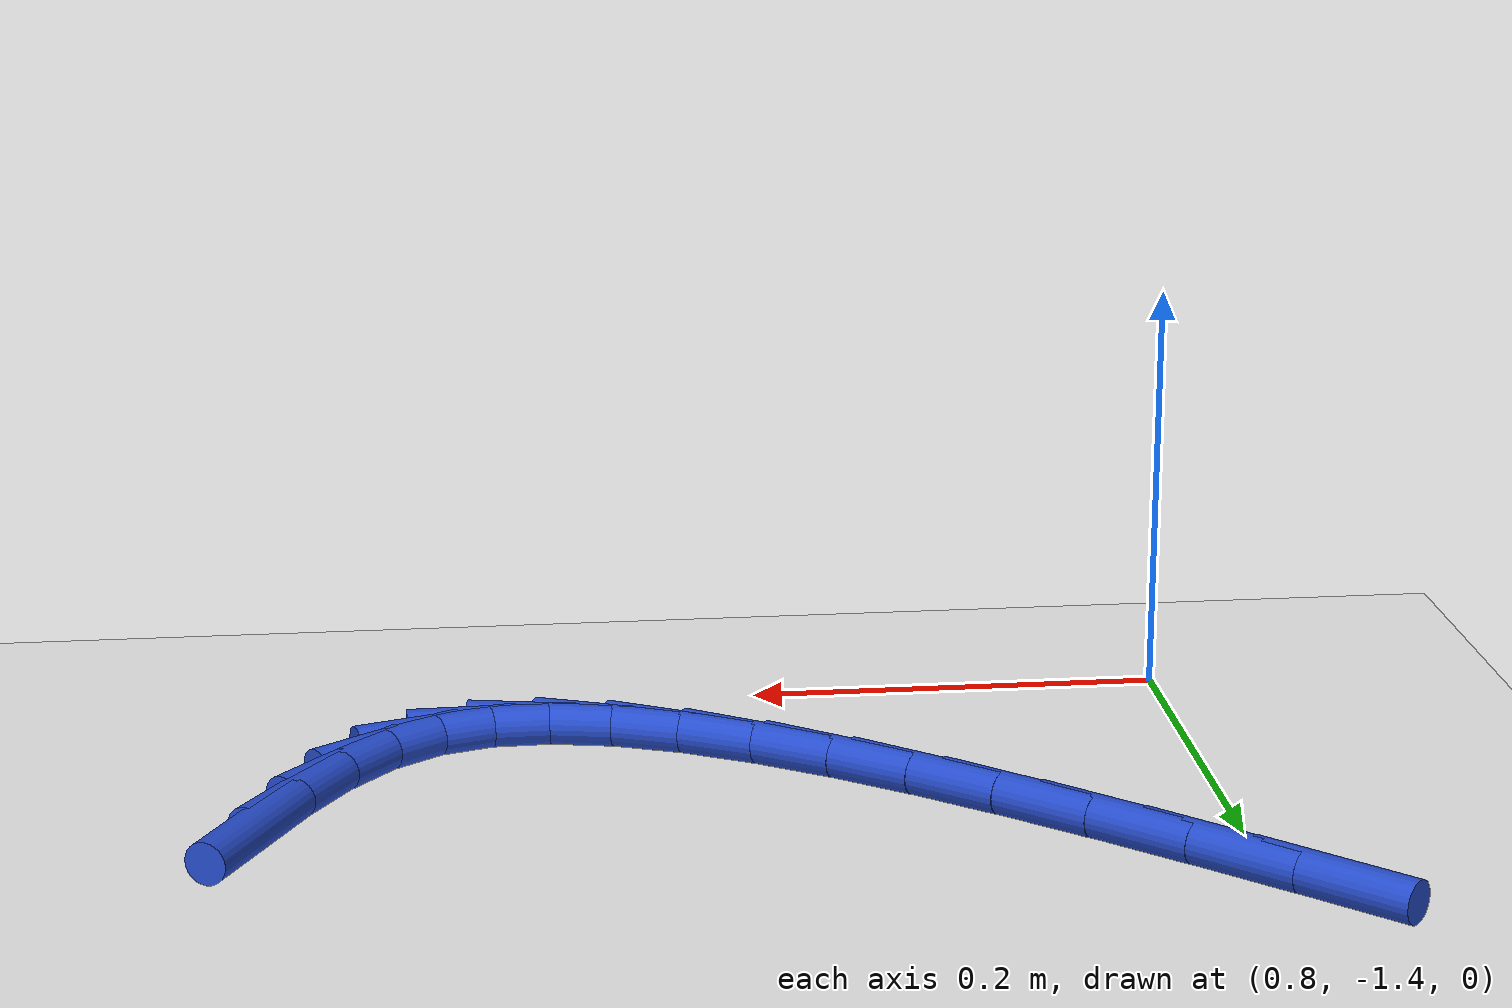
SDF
<sdf version="1.6">
 <world name="default">
  <model name="ground_plane">
   <static>1</static>
   <link name="link">
    <collision name="collision">
     <geometry><plane><normal>0 0 1</normal><size>100 100</size></plane></geometry>
     <surface><friction><ode><mu>100</mu><mu2>50</mu2></ode></friction></surface>
    </collision>
    <visual name="visual">
     <cast_shadows>0</cast_shadows>
     <geometry><plane><normal>0 0 1</normal><size>100 100</size></plane></geometry>
     <material>
      <script><uri>file://media/materials/scripts/gazebo.material</uri><name>Gazebo/WhiteGlow</name></script>
     </material>
    </visual>
   </link>
  </model>
  <model name="line">
   <link name="link_143">
    <pose>1.2387607213321248 -1.2268673184800838 0.01 0 1.57 1.1000270894159327</pose>
    <collision name="collision">
     <geometry><cylinder><radius>0.01</radius><length>0.08</length></cylinder></geometry>
    </collision>
    <visual name="visual">
     <material>
      <script><name>Gazebo/Blue</name><uri>file://media/materials/scripts/gazebo.material</uri></script>
     </material>
     <geometry><cylinder><radius>0.01</radius><length>0.08</length></cylinder></geometry>
    </visual>
   </link>
   <link name="link_144">
    <pose>1.220109661695691 -1.2635146237881982 0.01 0 1.57 1.0218045887473375</pose>
    <collision name="collision">
     <geometry><cylinder><radius>0.01</radius><length>0.08</length></cylinder></geometry>
    </collision>
    <visual name="visual">
     <material>
      <script><name>Gazebo/Blue</name><uri>file://media/materials/scripts/gazebo.material</uri></script>
     </material>
     <geometry><cylinder><radius>0.01</radius><length>0.08</length></cylinder></geometry>
    </visual>
   </link>
   <link name="link_145">
    <pose>1.2008221422049614 -1.295044665625639 0.01 0 1.57 0.8721326021165524</pose>
    <collision name="collision">
     <geometry><cylinder><radius>0.01</radius><length>0.08</length></cylinder></geometry>
    </collision>
    <visual name="visual">
     <material>
      <script><name>Gazebo/Blue</name><uri>file://media/materials/scripts/gazebo.material</uri></script>
     </material>
     <geometry><cylinder><radius>0.01</radius><length>0.08</length></cylinder></geometry>
    </visual>
   </link>
   <link name="link_146">
    <pose>1.179980596185808 -1.3198558334595898 0.01 0 1.57 0.6219839816550654</pose>
    <collision name="collision">
     <geometry><cylinder><radius>0.01</radius><length>0.08</length></cylinder></geometry>
    </collision>
    <visual name="visual">
     <material>
      <script><name>Gazebo/Blue</name><uri>file://media/materials/scripts/gazebo.material</uri></script>
     </material>
     <geometry><cylinder><radius>0.01</radius><length>0.08</length></cylinder></geometry>
    </visual>
   </link>
   <link name="link_147">
    <pose>1.1567492376537434 -1.3365105897363456 0.01 0 1.57 0.31700019651922245</pose>
    <collision name="collision">
     <geometry><cylinder><radius>0.01</radius><length>0.08</length></cylinder></geometry>
    </collision>
    <visual name="visual">
     <material>
      <script><name>Gazebo/Blue</name><uri>file://media/materials/scripts/gazebo.material</uri></script>
     </material>
     <geometry><cylinder><radius>0.01</radius><length>0.08</length></cylinder></geometry>
    </visual>
   </link>
   <link name="link_148">
    <pose>1.130985739240709 -1.3449626522412261 0.01 0 1.57 0.0321776545399955</pose>
    <collision name="collision">
     <geometry><cylinder><radius>0.01</radius><length>0.08</length></cylinder></geometry>
    </collision>
    <visual name="visual">
     <material>
      <script><name>Gazebo/Blue</name><uri>file://media/materials/scripts/gazebo.material</uri></script>
     </material>
     <geometry><cylinder><radius>0.01</radius><length>0.08</length></cylinder></geometry>
    </visual>
   </link>
   <link name="link_149">
    <pose>1.102897204952242 -1.3458667874632775 0.01 0 1.57 -0.1955775513677581</pose>
    <collision name="collision">
     <geometry><cylinder><radius>0.01</radius><length>0.08</length></cylinder></geometry>
    </collision>
    <visual name="visual">
     <material>
      <script><name>Gazebo/Blue</name><uri>file://media/materials/scripts/gazebo.material</uri></script>
     </material>
     <geometry><cylinder><radius>0.01</radius><length>0.08</length></cylinder></geometry>
    </visual>
   </link>
   <link name="link_150">
    <pose>1.0726934066542595 -1.3398831143017846 0.01 0 1.57 -0.3634145577701825</pose>
    <collision name="collision">
     <geometry><cylinder><radius>0.01</radius><length>0.08</length></cylinder></geometry>
    </collision>
    <visual name="visual">
     <material>
      <script><name>Gazebo/Blue</name><uri>file://media/materials/scripts/gazebo.material</uri></script>
     </material>
     <geometry><cylinder><radius>0.01</radius><length>0.08</length></cylinder></geometry>
    </visual>
   </link>
   <link name="link_151">
    <pose>1.0405841162126779 -1.3276717516560295 0.01 0 1.57 -0.4841726241691144</pose>
    <collision name="collision">
     <geometry><cylinder><radius>0.01</radius><length>0.08</length></cylinder></geometry>
    </collision>
    <visual name="visual">
     <material>
      <script><name>Gazebo/Blue</name><uri>file://media/materials/scripts/gazebo.material</uri></script>
     </material>
     <geometry><cylinder><radius>0.01</radius><length>0.08</length></cylinder></geometry>
    </visual>
   </link>
   <link name="link_152">
    <pose>1.0067791054934148 -1.3098928184252967 0.01 0 1.57 -0.5713242419711706</pose>
    <collision name="collision">
     <geometry><cylinder><radius>0.01</radius><length>0.08</length></cylinder></geometry>
    </collision>
    <visual name="visual">
     <material>
      <script><name>Gazebo/Blue</name><uri>file://media/materials/scripts/gazebo.material</uri></script>
     </material>
     <geometry><cylinder><radius>0.01</radius><length>0.08</length></cylinder></geometry>
    </visual>
   </link>
   <link name="link_153">
    <pose>0.9714881463623849 -1.2872064335088682 0.01 0 1.57 -0.6348408291894038</pose>
    <collision name="collision">
     <geometry><cylinder><radius>0.01</radius><length>0.08</length></cylinder></geometry>
    </collision>
    <visual name="visual">
     <material>
      <script><name>Gazebo/Blue</name><uri>file://media/materials/scripts/gazebo.material</uri></script>
     </material>
     <geometry><cylinder><radius>0.01</radius><length>0.08</length></cylinder></geometry>
    </visual>
   </link>
   <link name="link_154">
    <pose>0.9349210106855061 -1.2602727158060283 0.01 0 1.57 -0.6814144515055982</pose>
    <collision name="collision">
     <geometry><cylinder><radius>0.01</radius><length>0.08</length></cylinder></geometry>
    </collision>
    <visual name="visual">
     <material>
      <script><name>Gazebo/Blue</name><uri>file://media/materials/scripts/gazebo.material</uri></script>
     </material>
     <geometry><cylinder><radius>0.01</radius><length>0.08</length></cylinder></geometry>
    </visual>
   </link>
   <link name="link_155">
    <pose>0.897287470328695 -1.2297517842160595 0.01 0 1.57 -0.7154226264519133</pose>
    <collision name="collision">
     <geometry><cylinder><radius>0.01</radius><length>0.08</length></cylinder></geometry>
    </collision>
    <visual name="visual">
     <material>
      <script><name>Gazebo/Blue</name><uri>file://media/materials/scripts/gazebo.material</uri></script>
     </material>
     <geometry><cylinder><radius>0.01</radius><length>0.08</length></cylinder></geometry>
    </visual>
   </link>
   <link name="link_156">
    <pose>0.8587972971578683 -1.1963037576382458 0.01 0 1.57 -0.739712695238221</pose>
    <collision name="collision">
     <geometry><cylinder><radius>0.01</radius><length>0.08</length></cylinder></geometry>
    </collision>
    <visual name="visual">
     <material>
      <script><name>Gazebo/Blue</name><uri>file://media/materials/scripts/gazebo.material</uri></script>
     </material>
     <geometry><cylinder><radius>0.01</radius><length>0.08</length></cylinder></geometry>
    </visual>
   </link>
   <link name="link_157">
    <pose>0.8196602630389427 -1.16058875497187 0.01 0 1.57 -0.756116794938606</pose>
    <collision name="collision">
     <geometry><cylinder><radius>0.01</radius><length>0.08</length></cylinder></geometry>
    </collision>
    <visual name="visual">
     <material>
      <script><name>Gazebo/Blue</name><uri>file://media/materials/scripts/gazebo.material</uri></script>
     </material>
     <geometry><cylinder><radius>0.01</radius><length>0.08</length></cylinder></geometry>
    </visual>
   </link>
   <link name="link_158">
    <pose>0.7800861398378346 -1.1232668951162157 0.01 0 1.57 -0.7657664919592383</pose>
    <collision name="collision">
     <geometry><cylinder><radius>0.01</radius><length>0.08</length></cylinder></geometry>
    </collision>
    <visual name="visual">
     <material>
      <script><name>Gazebo/Blue</name><uri>file://media/materials/scripts/gazebo.material</uri></script>
     </material>
     <geometry><cylinder><radius>0.01</radius><length>0.08</length></cylinder></geometry>
    </visual>
   </link>
  </model>
 </world>
</sdf>
